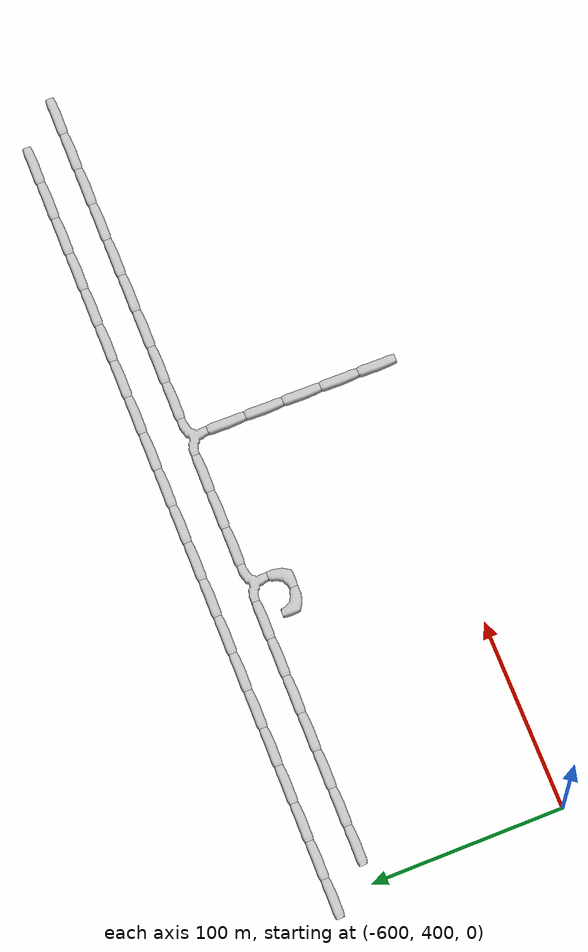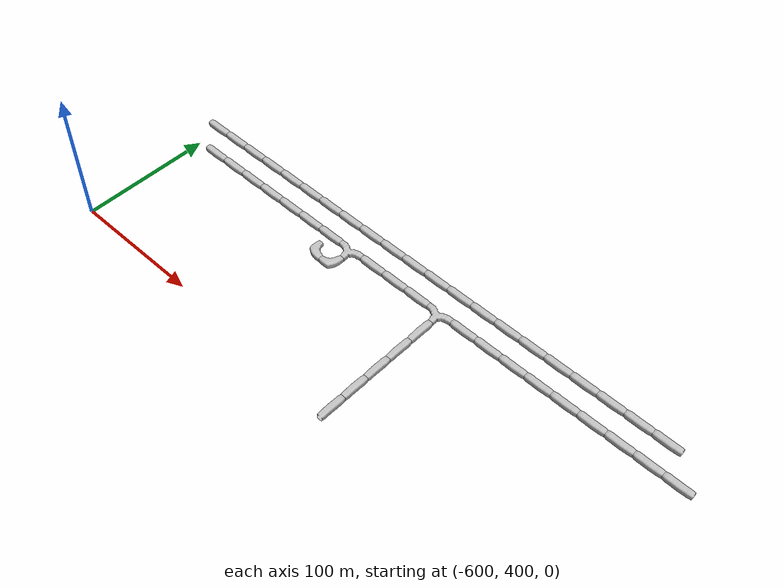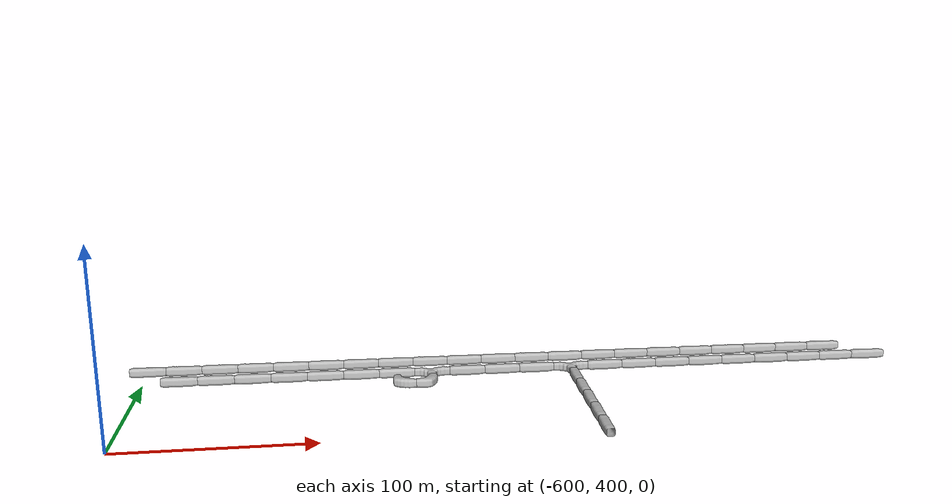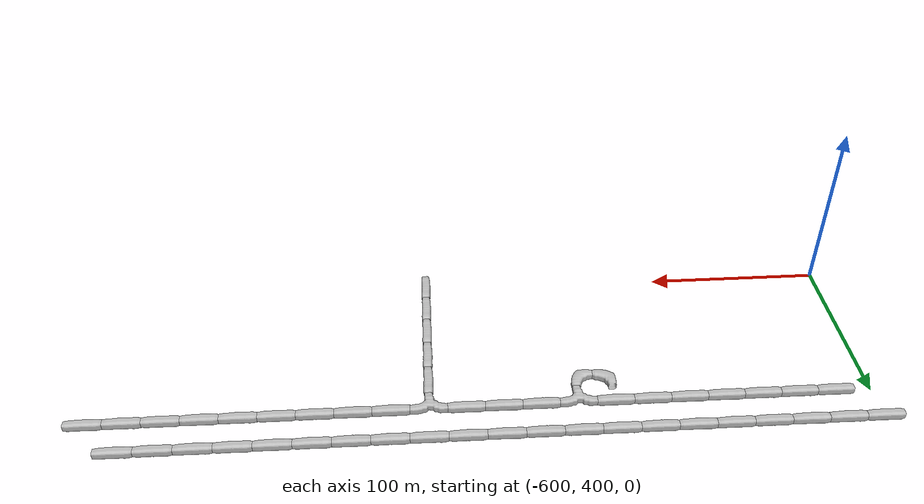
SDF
<sdf version="1.6">
 <world name="cave_16000_8">
  <include>
   <static>true</static>
   <name>cave_-18_20</name>
   <pose>-360 400 0 0 0 0.0</pose>
   <uri>model://cave_straight_20m</uri>
  </include>
  <include>
   <static>true</static>
   <name>cave_-18_21</name>
   <pose>-360 420 0 0 0 0.0</pose>
   <uri>model://cave_straight_20m</uri>
  </include>
  <include>
   <static>true</static>
   <name>cave_-18_22</name>
   <pose>-360 440 0 0 0 0.0</pose>
   <uri>model://cave_straight_20m</uri>
  </include>
  <include>
   <static>true</static>
   <name>cave_-18_23</name>
   <pose>-360 460 0 0 0 0.0</pose>
   <uri>model://cave_straight_20m</uri>
  </include>
  <include>
   <static>true</static>
   <name>cave_-18_24</name>
   <pose>-360 480 0 0 0 0.0</pose>
   <uri>model://cave_straight_20m</uri>
  </include>
  <include>
   <static>true</static>
   <name>cave_-18_25</name>
   <pose>-360 500 0 0 0 3.141592653589793</pose>
   <uri>model://cave_3way_20m</uri>
  </include>
  <include>
   <static>true</static>
   <name>cave_-17_25</name>
   <pose>-340 500 0 0 0 1.5707963267948966</pose>
   <uri>model://cave_straight_20m</uri>
  </include>
  <include>
   <static>true</static>
   <name>cave_-16_25</name>
   <pose>-320 500 0 0 0 1.5707963267948966</pose>
   <uri>model://cave_straight_20m</uri>
  </include>
  <include>
   <static>true</static>
   <name>cave_-15_25</name>
   <pose>-300 500 0 0 0 1.5707963267948966</pose>
   <uri>model://cave_straight_20m</uri>
  </include>
  <include>
   <static>true</static>
   <name>cave_-14_25</name>
   <pose>-280 500 0 0 0 1.5707963267948966</pose>
   <uri>model://cave_straight_20m</uri>
  </include>
  <include>
   <static>true</static>
   <name>cave_-13_25</name>
   <pose>-260 500 0 0 0 1.5707963267948966</pose>
   <uri>model://cave_straight_20m</uri>
  </include>
  <include>
   <static>true</static>
   <name>cave_-12_25</name>
   <pose>-240 500 0 0 0 1.5707963267948966</pose>
   <uri>model://cave_straight_20m</uri>
  </include>
  <include>
   <static>true</static>
   <name>cave_-11_25</name>
   <pose>-220 500 0 0 0 1.5707963267948966</pose>
   <uri>model://cave_straight_20m</uri>
  </include>
  <include>
   <static>true</static>
   <name>cave_-10_25</name>
   <pose>-200 500 0 0 0 1.5707963267948966</pose>
   <uri>model://cave_straight_20m</uri>
  </include>
  <include>
   <static>true</static>
   <name>cave_-9_25</name>
   <pose>-180 500 0 0 0 1.5707963267948966</pose>
   <uri>model://cave_straight_20m</uri>
  </include>
  <include>
   <static>true</static>
   <name>cave_-10_26</name>
   <pose>-200 520 0 0 0 1.5707963267948966</pose>
   <uri>model://cave_straight_20m</uri>
  </include>
  <include>
   <static>true</static>
   <name>cave_-11_26</name>
   <pose>-220 520 0 0 0 1.5707963267948966</pose>
   <uri>model://cave_straight_20m</uri>
  </include>
  <include>
   <static>true</static>
   <name>cave_-12_26</name>
   <pose>-240 520 0 0 0 1.5707963267948966</pose>
   <uri>model://cave_straight_20m</uri>
  </include>
  <include>
   <static>true</static>
   <name>cave_-13_26</name>
   <pose>-260 520 0 0 0 1.5707963267948966</pose>
   <uri>model://cave_straight_20m</uri>
  </include>
  <include>
   <static>true</static>
   <name>cave_-14_26</name>
   <pose>-280 520 0 0 0 1.5707963267948966</pose>
   <uri>model://cave_straight_20m</uri>
  </include>
  <include>
   <static>true</static>
   <name>cave_-15_26</name>
   <pose>-300 520 0 0 0 1.5707963267948966</pose>
   <uri>model://cave_straight_20m</uri>
  </include>
  <include>
   <static>true</static>
   <name>cave_-16_26</name>
   <pose>-320 520 0 0 0 1.5707963267948966</pose>
   <uri>model://cave_straight_20m</uri>
  </include>
  <include>
   <static>true</static>
   <name>cave_-17_26</name>
   <pose>-340 520 0 0 0 1.5707963267948966</pose>
   <uri>model://cave_straight_20m</uri>
  </include>
  <include>
   <static>true</static>
   <name>cave_-18_26</name>
   <pose>-360 520 0 0 0 1.5707963267948966</pose>
   <uri>model://cave_straight_20m</uri>
  </include>
  <include>
   <static>true</static>
   <name>cave_-19_26</name>
   <pose>-380 520 0 0 0 1.5707963267948966</pose>
   <uri>model://cave_straight_20m</uri>
  </include>
  <include>
   <static>true</static>
   <name>cave_-20_26</name>
   <pose>-400 520 0 0 0 1.5707963267948966</pose>
   <uri>model://cave_straight_20m</uri>
  </include>
  <include>
   <static>true</static>
   <name>cave_-21_26</name>
   <pose>-420 520 0 0 0 1.5707963267948966</pose>
   <uri>model://cave_straight_20m</uri>
  </include>
  <include>
   <static>true</static>
   <name>cave_-22_26</name>
   <pose>-440 520 0 0 0 1.5707963267948966</pose>
   <uri>model://cave_straight_20m</uri>
  </include>
  <include>
   <static>true</static>
   <name>cave_-23_26</name>
   <pose>-460 520 0 0 0 1.5707963267948966</pose>
   <uri>model://cave_straight_20m</uri>
  </include>
  <include>
   <static>true</static>
   <name>cave_-24_26</name>
   <pose>-480 520 0 0 0 1.5707963267948966</pose>
   <uri>model://cave_straight_20m</uri>
  </include>
  <include>
   <static>true</static>
   <name>cave_-25_26</name>
   <pose>-500 520 0 0 0 1.5707963267948966</pose>
   <uri>model://cave_straight_20m</uri>
  </include>
  <include>
   <static>true</static>
   <name>cave_-26_26</name>
   <pose>-520 520 0 0 0 1.5707963267948966</pose>
   <uri>model://cave_straight_20m</uri>
  </include>
  <include>
   <static>true</static>
   <name>cave_-27_26</name>
   <pose>-540 520 0 0 0 1.5707963267948966</pose>
   <uri>model://cave_straight_20m</uri>
  </include>
  <include>
   <static>true</static>
   <name>cave_-28_26</name>
   <pose>-560 520 0 0 0 1.5707963267948966</pose>
   <uri>model://cave_straight_20m</uri>
  </include>
  <include>
   <static>true</static>
   <name>cave_-29_26</name>
   <pose>-580 520 0 0 0 1.5707963267948966</pose>
   <uri>model://cave_straight_20m</uri>
  </include>
  <include>
   <static>true</static>
   <name>cave_-30_26</name>
   <pose>-600 520 0 0 0 1.5707963267948966</pose>
   <uri>model://cave_straight_20m</uri>
  </include>
  <include>
   <static>true</static>
   <name>cave_-19_25</name>
   <pose>-380 500 0 0 0 1.5707963267948966</pose>
   <uri>model://cave_straight_20m</uri>
  </include>
  <include>
   <static>true</static>
   <name>cave_-20_25</name>
   <pose>-400 500 0 0 0 1.5707963267948966</pose>
   <uri>model://cave_straight_20m</uri>
  </include>
  <include>
   <static>true</static>
   <name>cave_-21_25</name>
   <pose>-420 500 0 0 0 1.5707963267948966</pose>
   <uri>model://cave_straight_20m</uri>
  </include>
  <include>
   <static>true</static>
   <name>cave_-22_25</name>
   <pose>-440 500 0 0 0 3.141592653589793</pose>
   <uri>model://cave_3way_20m</uri>
  </include>
  <include>
   <static>true</static>
   <name>cave_-22_24</name>
   <pose>-440 480 0 0 0 1.5707963267948966</pose>
   <uri>model://cave_L_20m</uri>
  </include>
  <include>
   <static>true</static>
   <name>cave_-23_24</name>
   <pose>-460 480 0 0 0 0.0</pose>
   <uri>model://cave_L_20m</uri>
  </include>
  <include>
   <static>true</static>
   <name>cave_-23_25</name>
   <pose>-460 500 0 0 0 1.5707963267948966</pose>
   <uri>model://cave_straight_20m</uri>
  </include>
  <include>
   <static>true</static>
   <name>cave_-24_25</name>
   <pose>-480 500 0 0 0 1.5707963267948966</pose>
   <uri>model://cave_straight_20m</uri>
  </include>
  <include>
   <static>true</static>
   <name>cave_-25_25</name>
   <pose>-500 500 0 0 0 1.5707963267948966</pose>
   <uri>model://cave_straight_20m</uri>
  </include>
  <include>
   <static>true</static>
   <name>cave_-26_25</name>
   <pose>-520 500 0 0 0 1.5707963267948966</pose>
   <uri>model://cave_straight_20m</uri>
  </include>
  <include>
   <static>true</static>
   <name>cave_-27_25</name>
   <pose>-540 500 0 0 0 1.5707963267948966</pose>
   <uri>model://cave_straight_20m</uri>
  </include>
  <include>
   <static>true</static>
   <name>cave_-28_25</name>
   <pose>-560 500 0 0 0 1.5707963267948966</pose>
   <uri>model://cave_straight_20m</uri>
  </include>
  <include>
   <static>true</static>
   <name>cave_-29_25</name>
   <pose>-580 500 0 0 0 1.5707963267948966</pose>
   <uri>model://cave_straight_20m</uri>
  </include>
 </world>
</sdf>
